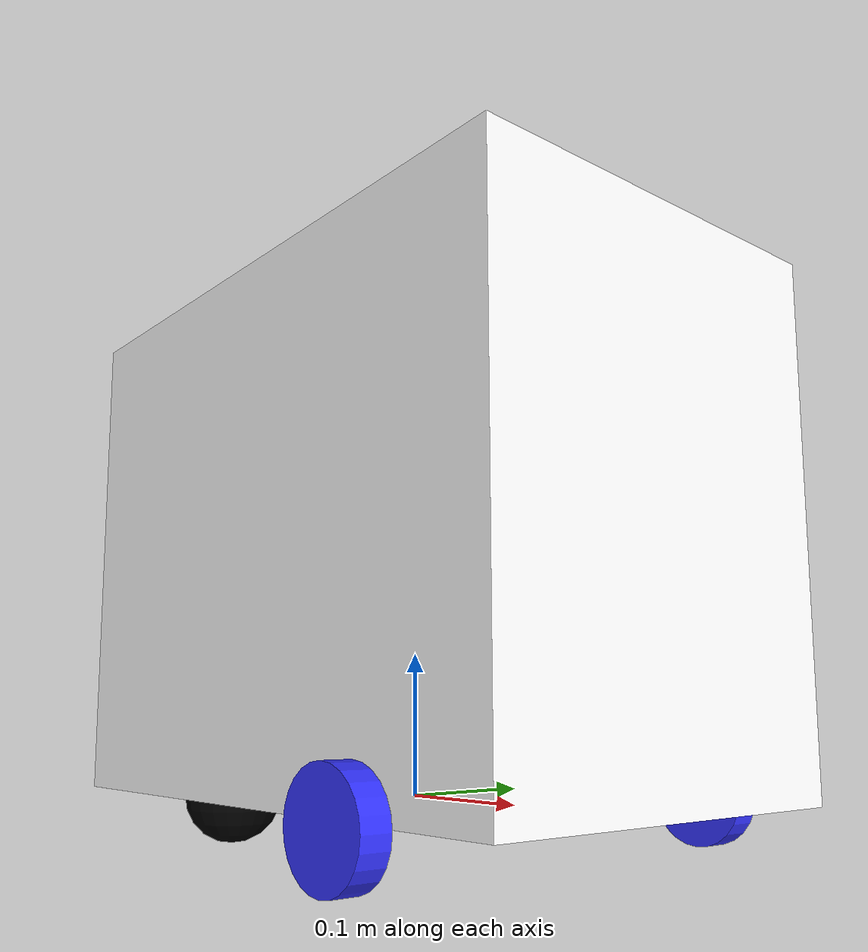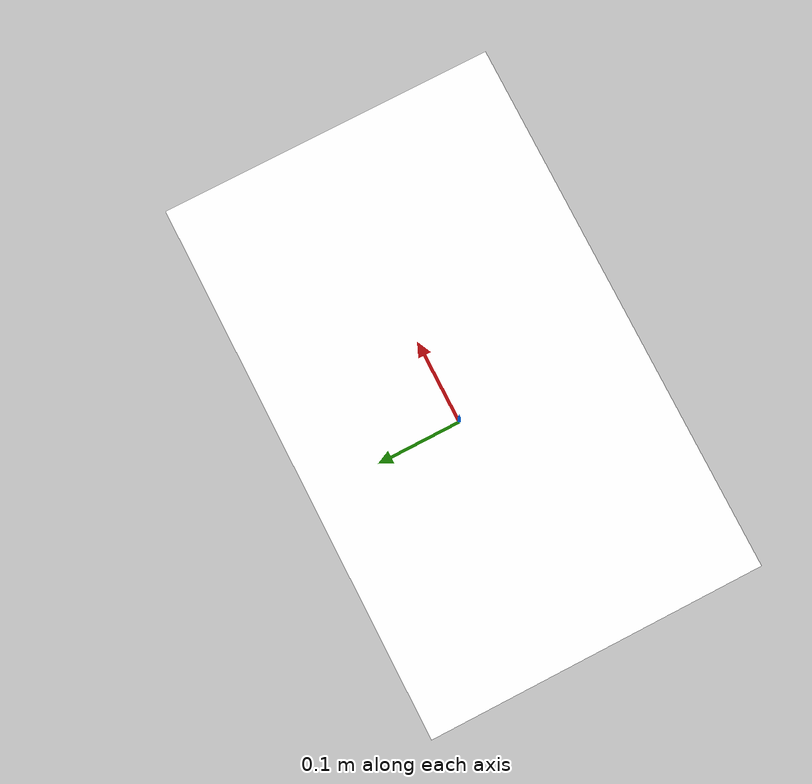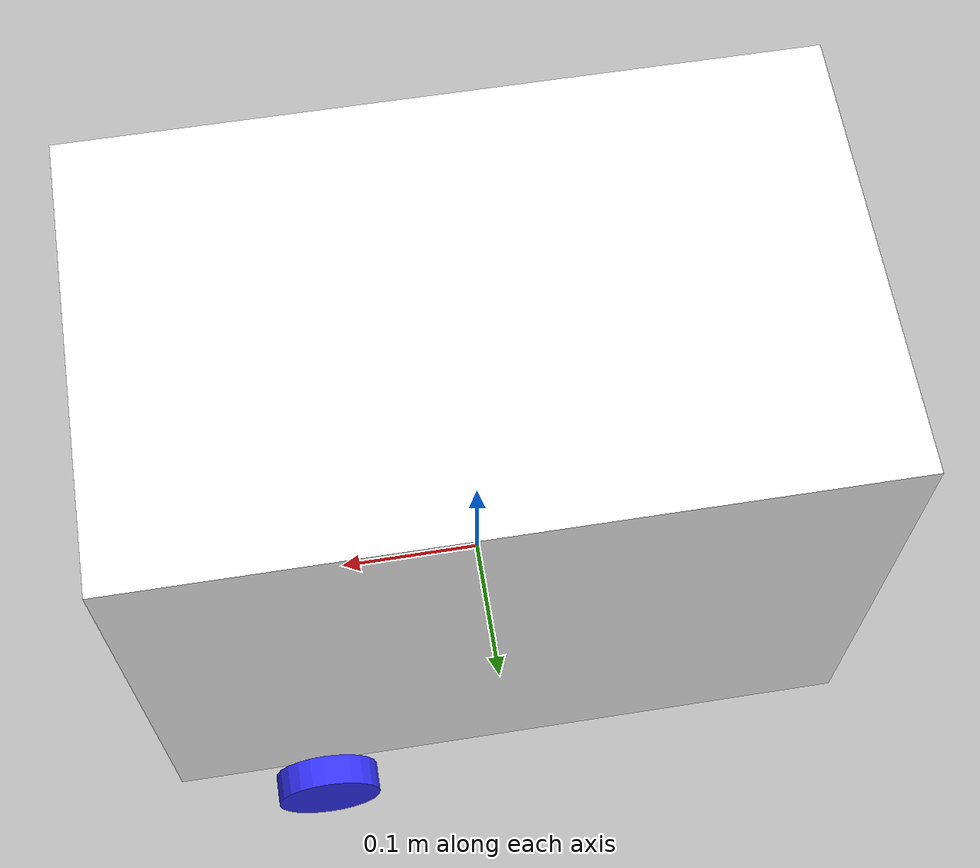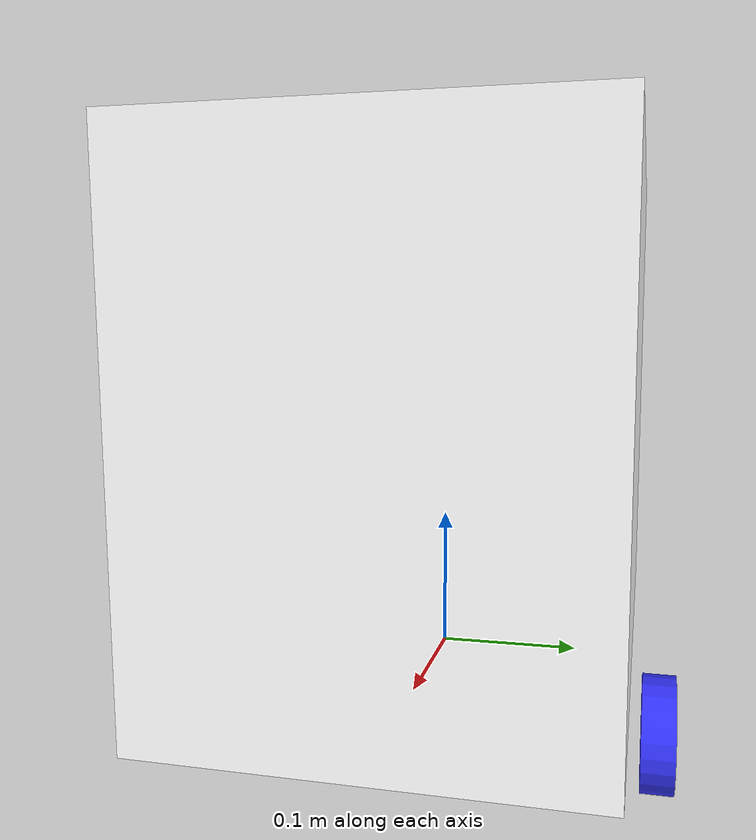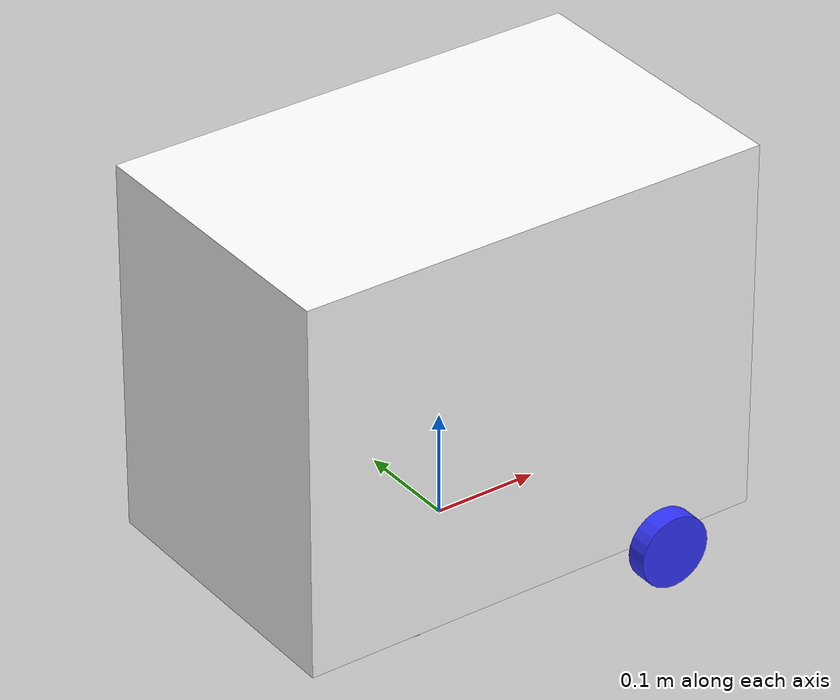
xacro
<?xml version="1.0"?>
<robot xmlns:xacro="http://www.ros.org/wiki/xacro" >

    <xacro:include filename="inertial_macros.xacro" />

    <material name="white">
        <color rgba="1 1 1 1" />
    </material>

    <material name="orange">
        <color rgba="1 0.3 0.1 1" />
    </material>

    <material name="blue">
        <color rgba="0.2 0.2 1 1" />
    </material>

    <material name="black">
        <color rgba="0 0 0 1" />
    </material>

    <!-- Base Link -->

    <link name="base_link">

    </link>

    <joint name="base_footprint_joint" type="fixed">
        <parent link="base_link"/>
        <child link="base_footprint"/>
        <origin xyz="0 0 0" rpy="0 0 0"/>
    </joint>

    <link name="base_footprint">
    </link>

    <!-- Chassis Link -->

    <joint name="chassis_joint" type="fixed">
        <parent link="base_link"/>
        <child link="chassis"/>
        <origin xyz="-0.23 0 0"/>
    </joint>

    <link name="chassis">
        <visual>
            <origin xyz="0.23 0 0.18"/>
            <geometry>
                <box size="0.46 0.285  0.36"/>
            </geometry>
            <material name="white"/>
        </visual>
        <collision>
            <origin xyz="0.23 0 0.18"/>
            <geometry>
                <box size="0.46 0.285  0.36"/>
            </geometry>
        </collision>
        <xacro:inertial_box mass="8" x="0.46" y="0.285" z="0.36">
            <origin xyz="0.23 0 0.305" rpy="0 0 0"/>
        </xacro:inertial_box>
    </link>

    <gazebo reference="chassis">
        <material>Gazebo/White</material>
    </gazebo>

    <!-- Left Back wheel link-->

    <joint name="left_back_wheel_joint" type="continuous">
        <parent link="base_link"/>
        <child link="left_back_wheel"/>
        <origin xyz="0 0.16 0" rpy="-${pi/2} 0 0"/>
        <axis xyz="0 0 1"/>
    </joint>

    <link name="left_back_wheel">
        <xacro:inertial_cylinder mass="0.2" length="0.02" radius="0.035">
            <origin xyz="0 0 0" rpy="0 0 0"/>
        </xacro:inertial_cylinder>
    </link>

    <gazebo reference="left_back_wheel">
        <material>Gazebo/Blue</material>
    </gazebo>

    <!-- Left front wheel link-->

    <joint name="left_front_wheel_joint" type="continuous">
        <parent link="base_link"/>
        <child link="left_front_wheel"/>
        <origin xyz="0.13 0.16 0" rpy="-${pi/2} 0 0"/>
        <axis xyz="0 0 1"/>
    </joint>

    <link name="left_front_wheel">
        <visual>
            <geometry>
                <cylinder radius="0.035" length="0.02"/>
            </geometry>
            <material name="blue"/>
        </visual>
        <collision>
            <geometry>
                <sphere radius="0.035"/>
            </geometry>
        </collision>
        <xacro:inertial_cylinder mass="0.2" length="0.02" radius="0.035">
            <origin xyz="0 0 0" rpy="0 0 0"/>
        </xacro:inertial_cylinder>
    </link>

    <gazebo reference="left_front_wheel">
        <material>Gazebo/Blue</material>
    </gazebo>

    <!-- Right Back wheel link-->

    <joint name="right_back_wheel_joint" type="continuous">
        <parent link="base_link"/>
        <child link="right_back_wheel"/>
        <origin xyz="0 -0.16 0" rpy="${pi/2} 0 0"/>
        <axis xyz="0 0 -1"/>
    </joint>

    <link name="right_back_wheel">
        <xacro:inertial_cylinder mass="0.2" length="0.02" radius="0.035">
            <origin xyz="0 0 0" rpy="0 0 0"/>
        </xacro:inertial_cylinder>
    </link>

    <gazebo reference="right_back_wheel">
        <material>Gazebo/Blue</material>
    </gazebo>

    <!-- Right front wheel link-->

    <joint name="right_front_wheel_joint" type="continuous">
        <parent link="base_link"/>
        <child link="right_front_wheel"/>
        <origin xyz="0.13 -0.16 0" rpy="${pi/2} 0 0"/>
        <axis xyz="0 0 -1"/>
    </joint>

    <link name="right_front_wheel">
        <visual>
            <geometry>
                <cylinder radius="0.035" length="0.02"/>
            </geometry>
            <material name="blue"/>
        </visual>
        <collision>
            <geometry>
                <sphere radius="0.035"/>
            </geometry>
        </collision>
        <xacro:inertial_cylinder mass="0.2" length="0.02" radius="0.035">
            <origin xyz="0 0 0" rpy="0 0 0"/>
        </xacro:inertial_cylinder>
    </link>

    <gazebo reference="right_front_wheel">
        <material>Gazebo/Blue</material>
    </gazebo>

    <!--Left Caster wheel Link-->

    <joint name="left_caster_wheel_joint" type="fixed">
        <parent link="chassis"/>
        <child link="left_caster_wheel"/>
        <origin xyz="0.13 0.09 0"/>
    </joint>

    <link name="left_caster_wheel">
        <visual>
            <geometry>
                <sphere radius="0.035"/>
            </geometry>
            <material name="black"/>
        </visual>
        <collision>
            <geometry>
                <sphere radius="0.035"/>
            </geometry>
        </collision>
        <xacro:inertial_sphere mass="0.2" radius="0.035">
            <origin xyz="0 0 0" rpy="0 0 0"/>
        </xacro:inertial_sphere>
    </link>

    <gazebo reference="left_caster_wheel">
        <material>Gazebo/Black</material>
        <mu1 value="0.001"/>
        <mu2 value="0.001"/>
    </gazebo>

    <!--Right Caster wheel Link-->

    <joint name="right_caster_wheel_joint" type="fixed">
        <parent link="chassis"/>
        <child link="right_caster_wheel"/>
        <origin xyz="0.13 -0.09 0"/>
    </joint>

    <link name="right_caster_wheel">
        <visual>
            <geometry>
                <sphere radius="0.035"/>
            </geometry>
            <material name="black"/>
        </visual>
        <collision>
            <geometry>
                <sphere radius="0.035"/>
            </geometry>
        </collision>
        <xacro:inertial_sphere mass="0.2" radius="0.035">
            <origin xyz="0 0 0" rpy="0 0 0"/>
        </xacro:inertial_sphere>
    </link>

    <gazebo reference="right_caster_wheel">
        <material>Gazebo/Black</material>
        <mu1 value="0.001"/>
        <mu2 value="0.001"/>
    </gazebo>

</robot>
